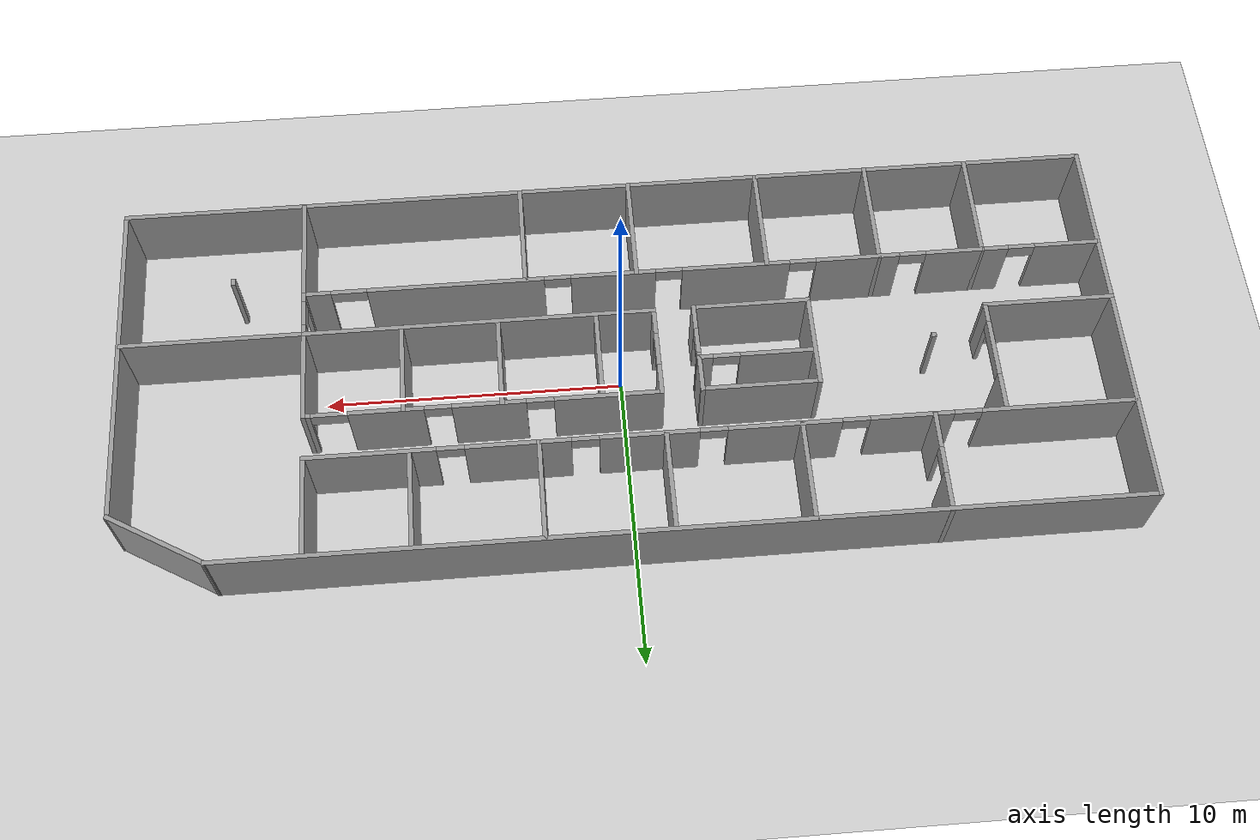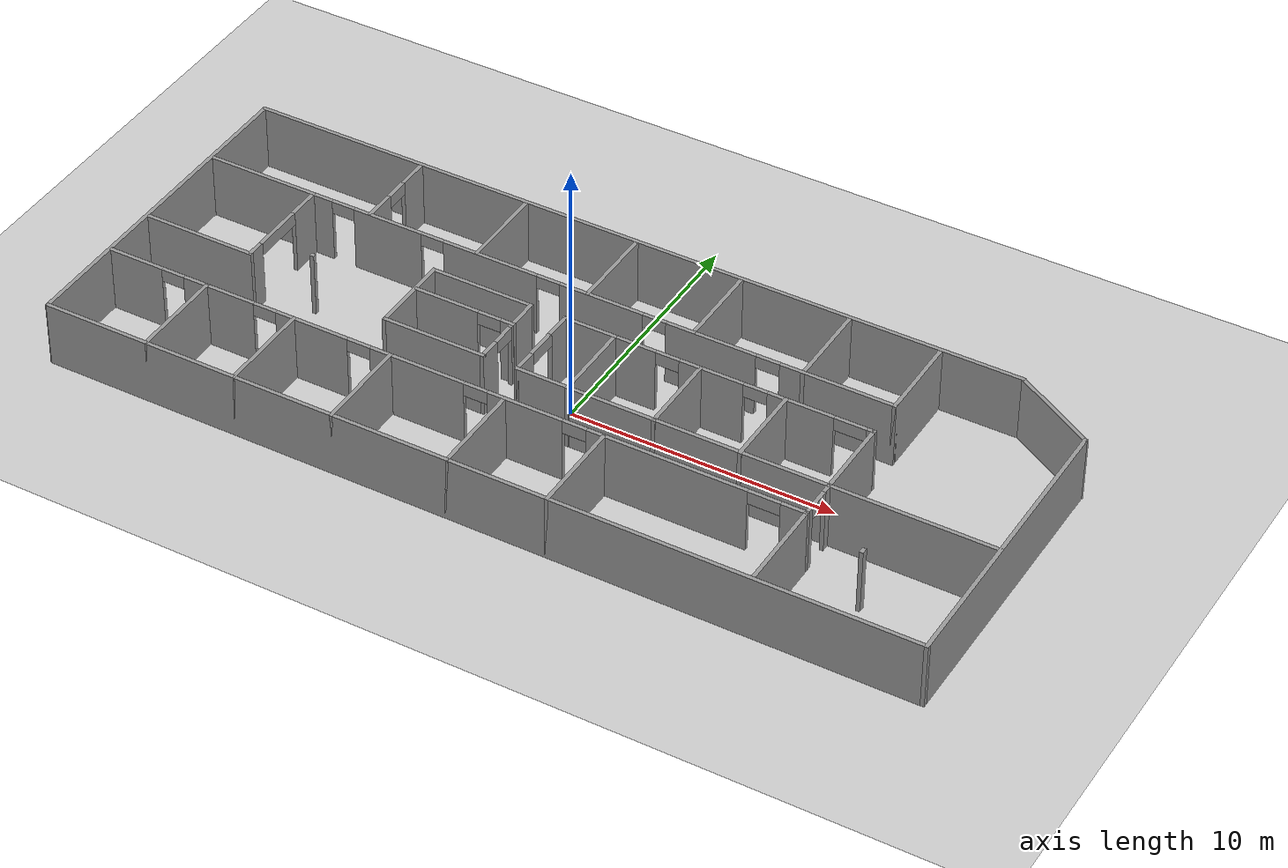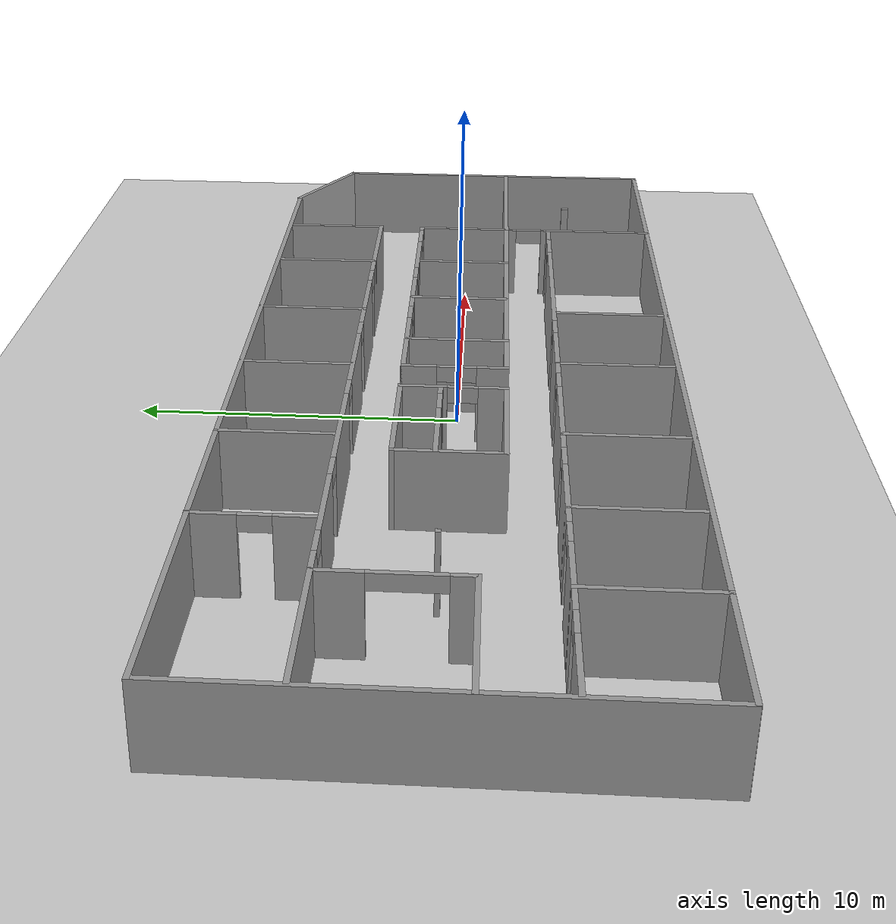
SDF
<?xml version='1.0'?>
<sdf version='1.6'>

 <world name="my_map">
    <!-- A global light source -->
    <include>
      <uri>model://sun</uri>
    </include>
    <!-- A ground plane -->
    <include>
      <uri>model://ground_plane</uri>
    </include>

  <model name='my_map'>
    <pose frame=''>0 0 0 0 -0 0</pose>
    <link name='Wall_0'>
      <collision name='Wall_0_Collision'>
        <geometry>
          <box>
            <size>30.15 0.15 2.5</size>
          </box>
        </geometry>
        <pose frame=''>0 0 1.25 0 -0 0</pose>
      </collision>
      <visual name='Wall_0_Visual'>
        <pose frame=''>0 0 1.25 0 -0 0</pose>
        <geometry>
          <box>
            <size>30.15 0.15 2.5</size>
          </box>
        </geometry>
        <material>
          <script>
            <uri>file://media/materials/scripts/gazebo.material</uri>
            <name>Gazebo/Grey</name>
          </script>
          <ambient>1 1 1 1</ambient>
        </material>
        <meta>
          <layer>0</layer>
        </meta>
      </visual>
      <pose frame=''>-1.56027 6.54473 0 0 -0 0</pose>
    </link>
    <link name='Wall_17'>
      <pose frame=''>-3.01877 -2.98027 0 0 -0 0</pose>
      <visual name='Wall_17_Visual_0'>
        <pose frame=''>-12.4419 0 1.25 0 -0 0</pose>
        <geometry>
          <box>
            <size>2.18355 0.15 2.5</size>
          </box>
        </geometry>
        <material>
          <script>
            <uri>file://media/materials/scripts/gazebo.material</uri>
            <name>Gazebo/Grey</name>
          </script>
          <ambient>1 1 1 1</ambient>
        </material>
        <meta>
          <layer>0</layer>
        </meta>
      </visual>
      <collision name='Wall_17_Collision_0'>
        <geometry>
          <box>
            <size>2.18355 0.15 2.5</size>
          </box>
        </geometry>
        <pose frame=''>-12.4419 0 1.25 0 -0 0</pose>
      </collision>
      <visual name='Wall_17_Visual_1'>
        <pose frame=''>-9.0323 0 1.25 0 -0 0</pose>
        <geometry>
          <box>
            <size>2.83572 0.15 2.5</size>
          </box>
        </geometry>
        <material>
          <script>
            <uri>file://media/materials/scripts/gazebo.material</uri>
            <name>Gazebo/Grey</name>
          </script>
          <ambient>1 1 1 1</ambient>
        </material>
        <meta>
          <layer>0</layer>
        </meta>
      </visual>
      <collision name='Wall_17_Collision_1'>
        <geometry>
          <box>
            <size>2.83572 0.15 2.5</size>
          </box>
        </geometry>
        <pose frame=''>-9.0323 0 1.25 0 -0 0</pose>
      </collision>
      <visual name='Wall_17_Visual_2'>
        <pose frame=''>-5.2867 0 1.25 0 -0 0</pose>
        <geometry>
          <box>
            <size>2.85548 0.15 2.5</size>
          </box>
        </geometry>
        <material>
          <script>
            <uri>file://media/materials/scripts/gazebo.material</uri>
            <name>Gazebo/Grey</name>
          </script>
          <ambient>1 1 1 1</ambient>
        </material>
        <meta>
          <layer>0</layer>
        </meta>
      </visual>
      <collision name='Wall_17_Collision_2'>
        <geometry>
          <box>
            <size>2.85548 0.15 2.5</size>
          </box>
        </geometry>
        <pose frame=''>-5.2867 0 1.25 0 -0 0</pose>
      </collision>
      <visual name='Wall_17_Visual_3'>
        <pose frame=''>-1.12602 0 1.25 0 -0 0</pose>
        <geometry>
          <box>
            <size>3.66588 0.15 2.5</size>
          </box>
        </geometry>
        <material>
          <script>
            <uri>file://media/materials/scripts/gazebo.material</uri>
            <name>Gazebo/Grey</name>
          </script>
          <ambient>1 1 1 1</ambient>
        </material>
        <meta>
          <layer>0</layer>
        </meta>
      </visual>
      <collision name='Wall_17_Collision_3'>
        <geometry>
          <box>
            <size>3.66588 0.15 2.5</size>
          </box>
        </geometry>
        <pose frame=''>-1.12602 0 1.25 0 -0 0</pose>
      </collision>
      <visual name='Wall_17_Visual_4'>
        <pose frame=''>3.04454 0 1.25 0 -0 0</pose>
        <geometry>
          <box>
            <size>2.87525 0.15 2.5</size>
          </box>
        </geometry>
        <material>
          <script>
            <uri>file://media/materials/scripts/gazebo.material</uri>
            <name>Gazebo/Grey</name>
          </script>
          <ambient>1 1 1 1</ambient>
        </material>
        <meta>
          <layer>0</layer>
        </meta>
      </visual>
      <collision name='Wall_17_Collision_4'>
        <geometry>
          <box>
            <size>2.87525 0.15 2.5</size>
          </box>
        </geometry>
        <pose frame=''>3.04454 0 1.25 0 -0 0</pose>
      </collision>
      <visual name='Wall_17_Visual_5'>
        <pose frame=''>8.36378 0 1.25 0 -0 0</pose>
        <geometry>
          <box>
            <size>5.96323 0.15 2.5</size>
          </box>
        </geometry>
        <material>
          <script>
            <uri>file://media/materials/scripts/gazebo.material</uri>
            <name>Gazebo/Grey</name>
          </script>
          <ambient>1 1 1 1</ambient>
        </material>
        <meta>
          <layer>0</layer>
        </meta>
      </visual>
      <collision name='Wall_17_Collision_5'>
        <geometry>
          <box>
            <size>5.96323 0.15 2.5</size>
          </box>
        </geometry>
        <pose frame=''>8.36378 0 1.25 0 -0 0</pose>
      </collision>
      <visual name='Wall_17_Visual_6'>
        <pose frame=''>13.0396 0 1.25 0 -0 0</pose>
        <geometry>
          <box>
            <size>0.988314 0.15 2.5</size>
          </box>
        </geometry>
        <material>
          <script>
            <uri>file://media/materials/scripts/gazebo.material</uri>
            <name>Gazebo/Grey</name>
          </script>
          <ambient>1 1 1 1</ambient>
        </material>
        <meta>
          <layer>0</layer>
        </meta>
      </visual>
      <collision name='Wall_17_Collision_6'>
        <geometry>
          <box>
            <size>0.988314 0.15 2.5</size>
          </box>
        </geometry>
        <pose frame=''>13.0396 0 1.25 0 -0 0</pose>
      </collision>
      <visual name='Wall_17_Visual_7'>
        <pose frame=''>-10.9002 0 2.25 0 -0 0</pose>
        <geometry>
          <box>
            <size>0.9 0.15 0.5</size>
          </box>
        </geometry>
        <material>
          <script>
            <uri>file://media/materials/scripts/gazebo.material</uri>
            <name>Gazebo/Grey</name>
          </script>
          <ambient>1 1 1 1</ambient>
        </material>
        <meta>
          <layer>0</layer>
        </meta>
      </visual>
      <collision name='Wall_17_Collision_7'>
        <geometry>
          <box>
            <size>0.9 0.15 0.5</size>
          </box>
        </geometry>
        <pose frame=''>-10.9002 0 2.25 0 -0 0</pose>
      </collision>
      <visual name='Wall_17_Visual_8'>
        <pose frame=''>-7.16444 0 2.25 0 -0 0</pose>
        <geometry>
          <box>
            <size>0.9 0.15 0.5</size>
          </box>
        </geometry>
        <material>
          <script>
            <uri>file://media/materials/scripts/gazebo.material</uri>
            <name>Gazebo/Grey</name>
          </script>
          <ambient>1 1 1 1</ambient>
        </material>
        <meta>
          <layer>0</layer>
        </meta>
      </visual>
      <collision name='Wall_17_Collision_8'>
        <geometry>
          <box>
            <size>0.9 0.15 0.5</size>
          </box>
        </geometry>
        <pose frame=''>-7.16444 0 2.25 0 -0 0</pose>
      </collision>
      <visual name='Wall_17_Visual_9'>
        <pose frame=''>-3.40896 0 2.25 0 -0 0</pose>
        <geometry>
          <box>
            <size>0.9 0.15 0.5</size>
          </box>
        </geometry>
        <material>
          <script>
            <uri>file://media/materials/scripts/gazebo.material</uri>
            <name>Gazebo/Grey</name>
          </script>
          <ambient>1 1 1 1</ambient>
        </material>
        <meta>
          <layer>0</layer>
        </meta>
      </visual>
      <collision name='Wall_17_Collision_9'>
        <geometry>
          <box>
            <size>0.9 0.15 0.5</size>
          </box>
        </geometry>
        <pose frame=''>-3.40896 0 2.25 0 -0 0</pose>
      </collision>
      <visual name='Wall_17_Visual_10'>
        <pose frame=''>1.15692 0 2.25 0 -0 0</pose>
        <geometry>
          <box>
            <size>0.9 0.15 0.5</size>
          </box>
        </geometry>
        <material>
          <script>
            <uri>file://media/materials/scripts/gazebo.material</uri>
            <name>Gazebo/Grey</name>
          </script>
          <ambient>1 1 1 1</ambient>
        </material>
        <meta>
          <layer>0</layer>
        </meta>
      </visual>
      <collision name='Wall_17_Collision_10'>
        <geometry>
          <box>
            <size>0.9 0.15 0.5</size>
          </box>
        </geometry>
        <pose frame=''>1.15692 0 2.25 0 -0 0</pose>
      </collision>
      <visual name='Wall_17_Visual_11'>
        <pose frame=''>4.93217 0 2.25 0 -0 0</pose>
        <geometry>
          <box>
            <size>0.9 0.15 0.5</size>
          </box>
        </geometry>
        <material>
          <script>
            <uri>file://media/materials/scripts/gazebo.material</uri>
            <name>Gazebo/Grey</name>
          </script>
          <ambient>1 1 1 1</ambient>
        </material>
        <meta>
          <layer>0</layer>
        </meta>
      </visual>
      <collision name='Wall_17_Collision_11'>
        <geometry>
          <box>
            <size>0.9 0.15 0.5</size>
          </box>
        </geometry>
        <pose frame=''>4.93217 0 2.25 0 -0 0</pose>
      </collision>
      <visual name='Wall_17_Visual_12'>
        <pose frame=''>11.9454 0 2.25 0 -0 0</pose>
        <geometry>
          <box>
            <size>1.2 0.15 0.5</size>
          </box>
        </geometry>
        <material>
          <script>
            <uri>file://media/materials/scripts/gazebo.material</uri>
            <name>Gazebo/Grey</name>
          </script>
          <ambient>1 1 1 1</ambient>
        </material>
        <meta>
          <layer>0</layer>
        </meta>
      </visual>
      <collision name='Wall_17_Collision_12'>
        <geometry>
          <box>
            <size>1.2 0.15 0.5</size>
          </box>
        </geometry>
        <pose frame=''>11.9454 0 2.25 0 -0 0</pose>
      </collision>
    </link>
    <link name='Wall_18'>
      <pose frame=''>10.4397 -2.21277 0 0 -0 1.5708</pose>
      <visual name='Wall_18_Visual_0'>
        <pose frame=''>-0.670294 0 1.25 0 -0 0</pose>
        <geometry>
          <box>
            <size>0.344645 0.15 2.5</size>
          </box>
        </geometry>
        <material>
          <script>
            <uri>file://media/materials/scripts/gazebo.material</uri>
            <name>Gazebo/Grey</name>
          </script>
          <ambient>1 1 1 1</ambient>
        </material>
        <meta>
          <layer>0</layer>
        </meta>
      </visual>
      <collision name='Wall_18_Collision_0'>
        <geometry>
          <box>
            <size>0.344645 0.15 2.5</size>
          </box>
        </geometry>
        <pose frame=''>-0.670294 0 1.25 0 -0 0</pose>
      </collision>
      <visual name='Wall_18_Visual_1'>
        <pose frame=''>0.622322 0 1.25 0 -0 0</pose>
        <geometry>
          <box>
            <size>0.440589 0.15 2.5</size>
          </box>
        </geometry>
        <material>
          <script>
            <uri>file://media/materials/scripts/gazebo.material</uri>
            <name>Gazebo/Grey</name>
          </script>
          <ambient>1 1 1 1</ambient>
        </material>
        <meta>
          <layer>0</layer>
        </meta>
      </visual>
      <collision name='Wall_18_Collision_1'>
        <geometry>
          <box>
            <size>0.440589 0.15 2.5</size>
          </box>
        </geometry>
        <pose frame=''>0.622322 0 1.25 0 -0 0</pose>
      </collision>
      <visual name='Wall_18_Visual_2'>
        <pose frame=''>-0.047972 0 2.25 0 -0 0</pose>
        <geometry>
          <box>
            <size>0.9 0.15 0.5</size>
          </box>
        </geometry>
        <material>
          <script>
            <uri>file://media/materials/scripts/gazebo.material</uri>
            <name>Gazebo/Grey</name>
          </script>
          <ambient>1 1 1 1</ambient>
        </material>
        <meta>
          <layer>0</layer>
        </meta>
      </visual>
      <collision name='Wall_18_Collision_2'>
        <geometry>
          <box>
            <size>0.9 0.15 0.5</size>
          </box>
        </geometry>
        <pose frame=''>-0.047972 0 2.25 0 -0 0</pose>
      </collision>
    </link>
    <link name='Wall_19'>
      <collision name='Wall_19_Collision'>
        <geometry>
          <box>
            <size>6.183 0.15 2.5</size>
          </box>
        </geometry>
        <pose frame=''>0 0 1.25 0 -0 0</pose>
      </collision>
      <visual name='Wall_19_Visual'>
        <pose frame=''>0 0 1.25 0 -0 0</pose>
        <geometry>
          <box>
            <size>6.183 0.15 2.5</size>
          </box>
        </geometry>
        <material>
          <script>
            <uri>file://media/materials/scripts/gazebo.material</uri>
            <name>Gazebo/Grey</name>
          </script>
          <ambient>1 1 1 1</ambient>
        </material>
        <meta>
          <layer>0</layer>
        </meta>
      </visual>
      <pose frame=''>13.4562 -1.44527 0 0 -0 0</pose>
    </link>
    <link name='Wall_2'>
      <collision name='Wall_2_Collision'>
        <geometry>
          <box>
            <size>33.205 0.15 2.5</size>
          </box>
        </geometry>
        <pose frame=''>0 0 1.25 0 -0 0</pose>
      </collision>
      <visual name='Wall_2_Visual'>
        <pose frame=''>0 0 1.25 0 -0 0</pose>
        <geometry>
          <box>
            <size>33.205 0.15 2.5</size>
          </box>
        </geometry>
        <material>
          <script>
            <uri>file://media/materials/scripts/gazebo.material</uri>
            <name>Gazebo/Grey</name>
          </script>
          <ambient>1 1 1 1</ambient>
        </material>
        <meta>
          <layer>0</layer>
        </meta>
      </visual>
      <pose frame=''>0.005228 -6.57227 0 0 -0 0</pose>
    </link>
    <link name='Wall_21'>
      <pose frame=''>-3.01877 3.17173 0 0 -0 0</pose>
      <visual name='Wall_21_Visual_0'>
        <pose frame=''>-10.9891 0 1.25 0 -0 0</pose>
        <geometry>
          <box>
            <size>5.0889 0.15 2.5</size>
          </box>
        </geometry>
        <material>
          <script>
            <uri>file://media/materials/scripts/gazebo.material</uri>
            <name>Gazebo/Grey</name>
          </script>
          <ambient>1 1 1 1</ambient>
        </material>
        <meta>
          <layer>0</layer>
        </meta>
      </visual>
      <collision name='Wall_21_Collision_0'>
        <geometry>
          <box>
            <size>5.0889 0.15 2.5</size>
          </box>
        </geometry>
        <pose frame=''>-10.9891 0 1.25 0 -0 0</pose>
      </collision>
      <visual name='Wall_21_Visual_1'>
        <pose frame=''>-6.17344 0 1.25 0 -0 0</pose>
        <geometry>
          <box>
            <size>2.74234 0.15 2.5</size>
          </box>
        </geometry>
        <material>
          <script>
            <uri>file://media/materials/scripts/gazebo.material</uri>
            <name>Gazebo/Grey</name>
          </script>
          <ambient>1 1 1 1</ambient>
        </material>
        <meta>
          <layer>0</layer>
        </meta>
      </visual>
      <collision name='Wall_21_Collision_1'>
        <geometry>
          <box>
            <size>2.74234 0.15 2.5</size>
          </box>
        </geometry>
        <pose frame=''>-6.17344 0 1.25 0 -0 0</pose>
      </collision>
      <visual name='Wall_21_Visual_2'>
        <pose frame=''>-2.0424 0 1.25 0 -0 0</pose>
        <geometry>
          <box>
            <size>3.71973 0.15 2.5</size>
          </box>
        </geometry>
        <material>
          <script>
            <uri>file://media/materials/scripts/gazebo.material</uri>
            <name>Gazebo/Grey</name>
          </script>
          <ambient>1 1 1 1</ambient>
        </material>
        <meta>
          <layer>0</layer>
        </meta>
      </visual>
      <collision name='Wall_21_Collision_2'>
        <geometry>
          <box>
            <size>3.71973 0.15 2.5</size>
          </box>
        </geometry>
        <pose frame=''>-2.0424 0 1.25 0 -0 0</pose>
      </collision>
      <visual name='Wall_21_Visual_3'>
        <pose frame=''>2.34286 0 1.25 0 -0 0</pose>
        <geometry>
          <box>
            <size>3.2508 0.15 2.5</size>
          </box>
        </geometry>
        <material>
          <script>
            <uri>file://media/materials/scripts/gazebo.material</uri>
            <name>Gazebo/Grey</name>
          </script>
          <ambient>1 1 1 1</ambient>
        </material>
        <meta>
          <layer>0</layer>
        </meta>
      </visual>
      <collision name='Wall_21_Collision_3'>
        <geometry>
          <box>
            <size>3.2508 0.15 2.5</size>
          </box>
        </geometry>
        <pose frame=''>2.34286 0 1.25 0 -0 0</pose>
      </collision>
      <visual name='Wall_21_Visual_4'>
        <pose frame=''>6.5826 0 1.25 0 -0 0</pose>
        <geometry>
          <box>
            <size>3.42869 0.15 2.5</size>
          </box>
        </geometry>
        <material>
          <script>
            <uri>file://media/materials/scripts/gazebo.material</uri>
            <name>Gazebo/Grey</name>
          </script>
          <ambient>1 1 1 1</ambient>
        </material>
        <meta>
          <layer>0</layer>
        </meta>
      </visual>
      <collision name='Wall_21_Collision_4'>
        <geometry>
          <box>
            <size>3.42869 0.15 2.5</size>
          </box>
        </geometry>
        <pose frame=''>6.5826 0 1.25 0 -0 0</pose>
      </collision>
      <visual name='Wall_21_Visual_5'>
        <pose frame=''>11.3652 0 1.25 0 -0 0</pose>
        <geometry>
          <box>
            <size>4.33655 0.15 2.5</size>
          </box>
        </geometry>
        <material>
          <script>
            <uri>file://media/materials/scripts/gazebo.material</uri>
            <name>Gazebo/Grey</name>
          </script>
          <ambient>1 1 1 1</ambient>
        </material>
        <meta>
          <layer>0</layer>
        </meta>
      </visual>
      <collision name='Wall_21_Collision_5'>
        <geometry>
          <box>
            <size>4.33655 0.15 2.5</size>
          </box>
        </geometry>
        <pose frame=''>11.3652 0 1.25 0 -0 0</pose>
      </collision>
      <visual name='Wall_21_Visual_6'>
        <pose frame=''>-7.9946 0 2.25 0 -0 0</pose>
        <geometry>
          <box>
            <size>0.9 0.15 0.5</size>
          </box>
        </geometry>
        <material>
          <script>
            <uri>file://media/materials/scripts/gazebo.material</uri>
            <name>Gazebo/Grey</name>
          </script>
          <ambient>1 1 1 1</ambient>
        </material>
        <meta>
          <layer>0</layer>
        </meta>
      </visual>
      <collision name='Wall_21_Collision_6'>
        <geometry>
          <box>
            <size>0.9 0.15 0.5</size>
          </box>
        </geometry>
        <pose frame=''>-7.9946 0 2.25 0 -0 0</pose>
      </collision>
      <visual name='Wall_21_Visual_7'>
        <pose frame=''>-4.35227 0 2.25 0 -0 0</pose>
        <geometry>
          <box>
            <size>0.9 0.15 0.5</size>
          </box>
        </geometry>
        <material>
          <script>
            <uri>file://media/materials/scripts/gazebo.material</uri>
            <name>Gazebo/Grey</name>
          </script>
          <ambient>1 1 1 1</ambient>
        </material>
        <meta>
          <layer>0</layer>
        </meta>
      </visual>
      <collision name='Wall_21_Collision_7'>
        <geometry>
          <box>
            <size>0.9 0.15 0.5</size>
          </box>
        </geometry>
        <pose frame=''>-4.35227 0 2.25 0 -0 0</pose>
      </collision>
      <visual name='Wall_21_Visual_8'>
        <pose frame=''>0.267461 0 2.25 0 -0 0</pose>
        <geometry>
          <box>
            <size>0.9 0.15 0.5</size>
          </box>
        </geometry>
        <material>
          <script>
            <uri>file://media/materials/scripts/gazebo.material</uri>
            <name>Gazebo/Grey</name>
          </script>
          <ambient>1 1 1 1</ambient>
        </material>
        <meta>
          <layer>0</layer>
        </meta>
      </visual>
      <collision name='Wall_21_Collision_8'>
        <geometry>
          <box>
            <size>0.9 0.15 0.5</size>
          </box>
        </geometry>
        <pose frame=''>0.267461 0 2.25 0 -0 0</pose>
      </collision>
      <visual name='Wall_21_Visual_9'>
        <pose frame=''>4.41826 0 2.25 0 -0 0</pose>
        <geometry>
          <box>
            <size>0.9 0.15 0.5</size>
          </box>
        </geometry>
        <material>
          <script>
            <uri>file://media/materials/scripts/gazebo.material</uri>
            <name>Gazebo/Grey</name>
          </script>
          <ambient>1 1 1 1</ambient>
        </material>
        <meta>
          <layer>0</layer>
        </meta>
      </visual>
      <collision name='Wall_21_Collision_9'>
        <geometry>
          <box>
            <size>0.9 0.15 0.5</size>
          </box>
        </geometry>
        <pose frame=''>4.41826 0 2.25 0 -0 0</pose>
      </collision>
      <visual name='Wall_21_Visual_10'>
        <pose frame=''>8.74695 0 2.25 0 -0 0</pose>
        <geometry>
          <box>
            <size>0.9 0.15 0.5</size>
          </box>
        </geometry>
        <material>
          <script>
            <uri>file://media/materials/scripts/gazebo.material</uri>
            <name>Gazebo/Grey</name>
          </script>
          <ambient>1 1 1 1</ambient>
        </material>
        <meta>
          <layer>0</layer>
        </meta>
      </visual>
      <collision name='Wall_21_Collision_10'>
        <geometry>
          <box>
            <size>0.9 0.15 0.5</size>
          </box>
        </geometry>
        <pose frame=''>8.74695 0 2.25 0 -0 0</pose>
      </collision>
    </link>
    <link name='Wall_22'>
      <collision name='Wall_22_Collision'>
        <geometry>
          <box>
            <size>3.4718 0.15 2.5</size>
          </box>
        </geometry>
        <pose frame=''>0 0 1.25 0 -0 0</pose>
      </collision>
      <visual name='Wall_22_Visual'>
        <pose frame=''>0 0 1.25 0 -0 0</pose>
        <geometry>
          <box>
            <size>3.4718 0.15 2.5</size>
          </box>
        </geometry>
        <material>
          <script>
            <uri>file://media/materials/scripts/gazebo.material</uri>
            <name>Gazebo/Grey</name>
          </script>
          <ambient>1 1 1 1</ambient>
        </material>
        <meta>
          <layer>0</layer>
        </meta>
      </visual>
      <pose frame=''>10.4397 4.83263 0 0 -0 1.5708</pose>
    </link>
    <link name='Wall_24'>
      <collision name='Wall_24_Collision'>
        <geometry>
          <box>
            <size>3.71862 0.15 2.5</size>
          </box>
        </geometry>
        <pose frame=''>0 0 1.25 0 -0 0</pose>
      </collision>
      <visual name='Wall_24_Visual'>
        <pose frame=''>0 0 1.25 0 -0 0</pose>
        <geometry>
          <box>
            <size>3.71862 0.15 2.5</size>
          </box>
        </geometry>
        <material>
          <script>
            <uri>file://media/materials/scripts/gazebo.material</uri>
            <name>Gazebo/Grey</name>
          </script>
          <ambient>1 1 1 1</ambient>
        </material>
        <meta>
          <layer>0</layer>
        </meta>
      </visual>
      <pose frame=''>10.4399 -4.76458 0 0 -0 -1.57069</pose>
    </link>
    <link name='Wall_29'>
      <collision name='Wall_29_Collision'>
        <geometry>
          <box>
            <size>4.436 0.15 2.5</size>
          </box>
        </geometry>
        <pose frame=''>0 0 1.25 0 -0 0</pose>
      </collision>
      <visual name='Wall_29_Visual'>
        <pose frame=''>0 0 1.25 0 -0 0</pose>
        <geometry>
          <box>
            <size>4.436 0.15 2.5</size>
          </box>
        </geometry>
        <material>
          <script>
            <uri>file://media/materials/scripts/gazebo.material</uri>
            <name>Gazebo/Grey</name>
          </script>
          <ambient>1 1 1 1</ambient>
        </material>
        <meta>
          <layer>0</layer>
        </meta>
      </visual>
      <pose frame=''>-14.4173 -0.778273 0 0 -0 0</pose>
    </link>
    <link name='Wall_33'>
      <pose frame=''>-12.2743 1.23329 0 0 -0 -1.5708</pose>
      <visual name='Wall_33_Visual_0'>
        <pose frame=''>-1.32363 0 1.25 0 -0 0</pose>
        <geometry>
          <box>
            <size>1.35275 0.15 2.5</size>
          </box>
        </geometry>
        <material>
          <script>
            <uri>file://media/materials/scripts/gazebo.material</uri>
            <name>Gazebo/Grey</name>
          </script>
          <ambient>1 1 1 1</ambient>
        </material>
        <meta>
          <layer>0</layer>
        </meta>
      </visual>
      <collision name='Wall_33_Collision_0'>
        <geometry>
          <box>
            <size>1.35275 0.15 2.5</size>
          </box>
        </geometry>
        <pose frame=''>-1.32363 0 1.25 0 -0 0</pose>
      </collision>
      <visual name='Wall_33_Visual_1'>
        <pose frame=''>1.67637 0 1.25 0 -0 0</pose>
        <geometry>
          <box>
            <size>0.647254 0.15 2.5</size>
          </box>
        </geometry>
        <material>
          <script>
            <uri>file://media/materials/scripts/gazebo.material</uri>
            <name>Gazebo/Grey</name>
          </script>
          <ambient>1 1 1 1</ambient>
        </material>
        <meta>
          <layer>0</layer>
        </meta>
      </visual>
      <collision name='Wall_33_Collision_1'>
        <geometry>
          <box>
            <size>0.647254 0.15 2.5</size>
          </box>
        </geometry>
        <pose frame=''>1.67637 0 1.25 0 -0 0</pose>
      </collision>
      <visual name='Wall_33_Visual_2'>
        <pose frame=''>0.352746 0 2.25 0 -0 0</pose>
        <geometry>
          <box>
            <size>2 0.15 0.5</size>
          </box>
        </geometry>
        <material>
          <script>
            <uri>file://media/materials/scripts/gazebo.material</uri>
            <name>Gazebo/Grey</name>
          </script>
          <ambient>1 1 1 1</ambient>
        </material>
        <meta>
          <layer>0</layer>
        </meta>
      </visual>
      <collision name='Wall_33_Collision_2'>
        <geometry>
          <box>
            <size>2 0.15 0.5</size>
          </box>
        </geometry>
        <pose frame=''>0.352746 0 2.25 0 -0 0</pose>
      </collision>
    </link>
    <link name='Wall_36'>
      <collision name='Wall_36_Collision'>
        <geometry>
          <box>
            <size>3.25014 0.15 2.5</size>
          </box>
        </geometry>
        <pose frame=''>0 0 1.25 0 -0 0</pose>
      </collision>
      <visual name='Wall_36_Visual'>
        <pose frame=''>0 0 1.25 0 -0 0</pose>
        <geometry>
          <box>
            <size>3.25014 0.15 2.5</size>
          </box>
        </geometry>
        <material>
          <script>
            <uri>file://media/materials/scripts/gazebo.material</uri>
            <name>Gazebo/Grey</name>
          </script>
          <ambient>1 1 1 1</ambient>
        </material>
        <meta>
          <layer>0</layer>
        </meta>
      </visual>
      <pose frame=''>-6.39227 0.104727 0 0 -0 -1.5708</pose>
    </link>
    <link name='Wall_37'>
      <collision name='Wall_37_Collision'>
        <geometry>
          <box>
            <size>4 0.15 2.5</size>
          </box>
        </geometry>
        <pose frame=''>0 0 1.25 0 -0 0</pose>
      </collision>
      <visual name='Wall_37_Visual'>
        <pose frame=''>0 0 1.25 0 -0 0</pose>
        <geometry>
          <box>
            <size>4 0.15 2.5</size>
          </box>
        </geometry>
        <material>
          <script>
            <uri>file://media/materials/scripts/gazebo.material</uri>
            <name>Gazebo/Grey</name>
          </script>
          <ambient>1 1 1 1</ambient>
        </material>
        <meta>
          <layer>0</layer>
        </meta>
      </visual>
      <pose frame=''>-4.46727 -1.44527 0 0 -0 0</pose>
    </link>
    <link name='Wall_38'>
      <pose frame=''>-2.54227 0.104727 0 0 -0 1.5708</pose>
      <visual name='Wall_38_Visual_0'>
        <pose frame=''>-1.17342 0 1.25 0 -0 0</pose>
        <geometry>
          <box>
            <size>0.903304 0.15 2.5</size>
          </box>
        </geometry>
        <material>
          <script>
            <uri>file://media/materials/scripts/gazebo.material</uri>
            <name>Gazebo/Grey</name>
          </script>
          <ambient>1 1 1 1</ambient>
        </material>
        <meta>
          <layer>0</layer>
        </meta>
      </visual>
      <collision name='Wall_38_Collision_0'>
        <geometry>
          <box>
            <size>0.903304 0.15 2.5</size>
          </box>
        </geometry>
        <pose frame=''>-1.17342 0 1.25 0 -0 0</pose>
      </collision>
      <visual name='Wall_38_Visual_1'>
        <pose frame=''>0.901652 0 1.25 0 -0 0</pose>
        <geometry>
          <box>
            <size>1.44684 0.15 2.5</size>
          </box>
        </geometry>
        <material>
          <script>
            <uri>file://media/materials/scripts/gazebo.material</uri>
            <name>Gazebo/Grey</name>
          </script>
          <ambient>1 1 1 1</ambient>
        </material>
        <meta>
          <layer>0</layer>
        </meta>
      </visual>
      <collision name='Wall_38_Collision_1'>
        <geometry>
          <box>
            <size>1.44684 0.15 2.5</size>
          </box>
        </geometry>
        <pose frame=''>0.901652 0 1.25 0 -0 0</pose>
      </collision>
      <visual name='Wall_38_Visual_2'>
        <pose frame=''>-0.271767 0 2.25 0 -0 0</pose>
        <geometry>
          <box>
            <size>0.9 0.15 0.5</size>
          </box>
        </geometry>
        <material>
          <script>
            <uri>file://media/materials/scripts/gazebo.material</uri>
            <name>Gazebo/Grey</name>
          </script>
          <ambient>1 1 1 1</ambient>
        </material>
        <meta>
          <layer>0</layer>
        </meta>
      </visual>
      <collision name='Wall_38_Collision_2'>
        <geometry>
          <box>
            <size>0.9 0.15 0.5</size>
          </box>
        </geometry>
        <pose frame=''>-0.271767 0 2.25 0 -0 0</pose>
      </collision>
    </link>
    <link name='Wall_39'>
      <collision name='Wall_39_Collision'>
        <geometry>
          <box>
            <size>4 0.15 2.5</size>
          </box>
        </geometry>
        <pose frame=''>0 0 1.25 0 -0 0</pose>
      </collision>
      <visual name='Wall_39_Visual'>
        <pose frame=''>0 0 1.25 0 -0 0</pose>
        <geometry>
          <box>
            <size>4 0.15 2.5</size>
          </box>
        </geometry>
        <material>
          <script>
            <uri>file://media/materials/scripts/gazebo.material</uri>
            <name>Gazebo/Grey</name>
          </script>
          <ambient>1 1 1 1</ambient>
        </material>
        <meta>
          <layer>0</layer>
        </meta>
      </visual>
      <pose frame=''>-4.46727 1.65473 0 0 -0 3.14159</pose>
    </link>
    <link name='Wall_41'>
      <pose frame=''>-1.20227 0.104727 0 0 -0 -1.5708</pose>
      <visual name='Wall_41_Visual_0'>
        <pose frame=''>-1.08533 0 1.25 0 -0 0</pose>
        <geometry>
          <box>
            <size>1.07934 0.15 2.5</size>
          </box>
        </geometry>
        <material>
          <script>
            <uri>file://media/materials/scripts/gazebo.material</uri>
            <name>Gazebo/Grey</name>
          </script>
          <ambient>1 1 1 1</ambient>
        </material>
        <meta>
          <layer>0</layer>
        </meta>
      </visual>
      <collision name='Wall_41_Collision_0'>
        <geometry>
          <box>
            <size>1.07934 0.15 2.5</size>
          </box>
        </geometry>
        <pose frame=''>-1.08533 0 1.25 0 -0 0</pose>
      </collision>
      <visual name='Wall_41_Visual_1'>
        <pose frame=''>1.13967 0 1.25 0 -0 0</pose>
        <geometry>
          <box>
            <size>0.970656 0.15 2.5</size>
          </box>
        </geometry>
        <material>
          <script>
            <uri>file://media/materials/scripts/gazebo.material</uri>
            <name>Gazebo/Grey</name>
          </script>
          <ambient>1 1 1 1</ambient>
        </material>
        <meta>
          <layer>0</layer>
        </meta>
      </visual>
      <collision name='Wall_41_Collision_1'>
        <geometry>
          <box>
            <size>0.970656 0.15 2.5</size>
          </box>
        </geometry>
        <pose frame=''>1.13967 0 1.25 0 -0 0</pose>
      </collision>
      <visual name='Wall_41_Visual_2'>
        <pose frame=''>0.054344 0 2.25 0 -0 0</pose>
        <geometry>
          <box>
            <size>1.2 0.15 0.5</size>
          </box>
        </geometry>
        <material>
          <script>
            <uri>file://media/materials/scripts/gazebo.material</uri>
            <name>Gazebo/Grey</name>
          </script>
          <ambient>1 1 1 1</ambient>
        </material>
        <meta>
          <layer>0</layer>
        </meta>
      </visual>
      <collision name='Wall_41_Collision_2'>
        <geometry>
          <box>
            <size>1.2 0.15 0.5</size>
          </box>
        </geometry>
        <pose frame=''>0.054344 0 2.25 0 -0 0</pose>
      </collision>
    </link>
    <link name='Wall_42'>
      <collision name='Wall_42_Collision'>
        <geometry>
          <box>
            <size>11.792 0.15 2.5</size>
          </box>
        </geometry>
        <pose frame=''>0 0 1.25 0 -0 0</pose>
      </collision>
      <visual name='Wall_42_Visual'>
        <pose frame=''>0 0 1.25 0 -0 0</pose>
        <geometry>
          <box>
            <size>11.792 0.15 2.5</size>
          </box>
        </geometry>
        <material>
          <script>
            <uri>file://media/materials/scripts/gazebo.material</uri>
            <name>Gazebo/Grey</name>
          </script>
          <ambient>1 1 1 1</ambient>
        </material>
        <meta>
          <layer>0</layer>
        </meta>
      </visual>
      <pose frame=''>4.61873 -1.44527 0 0 -0 0</pose>
    </link>
    <link name='Wall_45'>
      <pose frame=''>4.61873 1.65473 0 0 -0 0</pose>
      <visual name='Wall_45_Visual_0'>
        <pose frame=''>-4.1007 0 1.25 0 -0 0</pose>
        <geometry>
          <box>
            <size>3.59059 0.15 2.5</size>
          </box>
        </geometry>
        <material>
          <script>
            <uri>file://media/materials/scripts/gazebo.material</uri>
            <name>Gazebo/Grey</name>
          </script>
          <ambient>1 1 1 1</ambient>
        </material>
        <meta>
          <layer>0</layer>
        </meta>
      </visual>
      <collision name='Wall_45_Collision_0'>
        <geometry>
          <box>
            <size>3.59059 0.15 2.5</size>
          </box>
        </geometry>
        <pose frame=''>-4.1007 0 1.25 0 -0 0</pose>
      </collision>
      <visual name='Wall_45_Visual_1'>
        <pose frame=''>-0.195089 0 1.25 0 -0 0</pose>
        <geometry>
          <box>
            <size>2.42064 0.15 2.5</size>
          </box>
        </geometry>
        <material>
          <script>
            <uri>file://media/materials/scripts/gazebo.material</uri>
            <name>Gazebo/Grey</name>
          </script>
          <ambient>1 1 1 1</ambient>
        </material>
        <meta>
          <layer>0</layer>
        </meta>
      </visual>
      <collision name='Wall_45_Collision_1'>
        <geometry>
          <box>
            <size>2.42064 0.15 2.5</size>
          </box>
        </geometry>
        <pose frame=''>-0.195089 0 1.25 0 -0 0</pose>
      </collision>
      <visual name='Wall_45_Visual_2'>
        <pose frame=''>3.14938 0 1.25 0 -0 0</pose>
        <geometry>
          <box>
            <size>2.46829 0.15 2.5</size>
          </box>
        </geometry>
        <material>
          <script>
            <uri>file://media/materials/scripts/gazebo.material</uri>
            <name>Gazebo/Grey</name>
          </script>
          <ambient>1 1 1 1</ambient>
        </material>
        <meta>
          <layer>0</layer>
        </meta>
      </visual>
      <collision name='Wall_45_Collision_2'>
        <geometry>
          <box>
            <size>2.46829 0.15 2.5</size>
          </box>
        </geometry>
        <pose frame=''>3.14938 0 1.25 0 -0 0</pose>
      </collision>
      <visual name='Wall_45_Visual_3'>
        <pose frame=''>5.73976 0 1.25 0 -0 0</pose>
        <geometry>
          <box>
            <size>0.312475 0.15 2.5</size>
          </box>
        </geometry>
        <material>
          <script>
            <uri>file://media/materials/scripts/gazebo.material</uri>
            <name>Gazebo/Grey</name>
          </script>
          <ambient>1 1 1 1</ambient>
        </material>
        <meta>
          <layer>0</layer>
        </meta>
      </visual>
      <collision name='Wall_45_Collision_3'>
        <geometry>
          <box>
            <size>0.312475 0.15 2.5</size>
          </box>
        </geometry>
        <pose frame=''>5.73976 0 1.25 0 -0 0</pose>
      </collision>
      <visual name='Wall_45_Visual_4'>
        <pose frame=''>-1.85541 0 2.25 0 -0 0</pose>
        <geometry>
          <box>
            <size>0.9 0.15 0.5</size>
          </box>
        </geometry>
        <material>
          <script>
            <uri>file://media/materials/scripts/gazebo.material</uri>
            <name>Gazebo/Grey</name>
          </script>
          <ambient>1 1 1 1</ambient>
        </material>
        <meta>
          <layer>0</layer>
        </meta>
      </visual>
      <collision name='Wall_45_Collision_4'>
        <geometry>
          <box>
            <size>0.9 0.15 0.5</size>
          </box>
        </geometry>
        <pose frame=''>-1.85541 0 2.25 0 -0 0</pose>
      </collision>
      <visual name='Wall_45_Visual_5'>
        <pose frame=''>1.46523 0 2.25 0 -0 0</pose>
        <geometry>
          <box>
            <size>0.9 0.15 0.5</size>
          </box>
        </geometry>
        <material>
          <script>
            <uri>file://media/materials/scripts/gazebo.material</uri>
            <name>Gazebo/Grey</name>
          </script>
          <ambient>1 1 1 1</ambient>
        </material>
        <meta>
          <layer>0</layer>
        </meta>
      </visual>
      <collision name='Wall_45_Collision_5'>
        <geometry>
          <box>
            <size>0.9 0.15 0.5</size>
          </box>
        </geometry>
        <pose frame=''>1.46523 0 2.25 0 -0 0</pose>
      </collision>
      <visual name='Wall_45_Visual_6'>
        <pose frame=''>4.98353 0 2.25 0 -0 0</pose>
        <geometry>
          <box>
            <size>1.2 0.15 0.5</size>
          </box>
        </geometry>
        <material>
          <script>
            <uri>file://media/materials/scripts/gazebo.material</uri>
            <name>Gazebo/Grey</name>
          </script>
          <ambient>1 1 1 1</ambient>
        </material>
        <meta>
          <layer>0</layer>
        </meta>
      </visual>
      <collision name='Wall_45_Collision_6'>
        <geometry>
          <box>
            <size>1.2 0.15 0.5</size>
          </box>
        </geometry>
        <pose frame=''>4.98353 0 2.25 0 -0 0</pose>
      </collision>
    </link>
    <link name='Wall_46'>
      <collision name='Wall_46_Collision'>
        <geometry>
          <box>
            <size>3.25042 0.15 2.5</size>
          </box>
        </geometry>
        <pose frame=''>0 0 1.25 0 -0 0</pose>
      </collision>
      <visual name='Wall_46_Visual'>
        <pose frame=''>0 0 1.25 0 -0 0</pose>
        <geometry>
          <box>
            <size>3.25042 0.15 2.5</size>
          </box>
        </geometry>
        <material>
          <script>
            <uri>file://media/materials/scripts/gazebo.material</uri>
            <name>Gazebo/Grey</name>
          </script>
          <ambient>1 1 1 1</ambient>
        </material>
        <meta>
          <layer>0</layer>
        </meta>
      </visual>
      <pose frame=''>10.4397 0.104727 0 0 -0 -1.5708</pose>
    </link>
    <link name='Wall_51'>
      <pose frame=''>-9.93201 4.87923 0 0 -0 -1.5708</pose>
      <visual name='Wall_51_Visual_0'>
        <pose frame=''>-1.07723 0 1.25 0 -0 0</pose>
        <geometry>
          <box>
            <size>1.34554 0.15 2.5</size>
          </box>
        </geometry>
        <material>
          <script>
            <uri>file://media/materials/scripts/gazebo.material</uri>
            <name>Gazebo/Grey</name>
          </script>
          <ambient>1 1 1 1</ambient>
        </material>
        <meta>
          <layer>0</layer>
        </meta>
      </visual>
      <collision name='Wall_51_Collision_0'>
        <geometry>
          <box>
            <size>1.34554 0.15 2.5</size>
          </box>
        </geometry>
        <pose frame=''>-1.07723 0 1.25 0 -0 0</pose>
      </collision>
      <visual name='Wall_51_Visual_1'>
        <pose frame=''>1.12277 0 1.25 0 -0 0</pose>
        <geometry>
          <box>
            <size>1.25446 0.15 2.5</size>
          </box>
        </geometry>
        <material>
          <script>
            <uri>file://media/materials/scripts/gazebo.material</uri>
            <name>Gazebo/Grey</name>
          </script>
          <ambient>1 1 1 1</ambient>
        </material>
        <meta>
          <layer>0</layer>
        </meta>
      </visual>
      <collision name='Wall_51_Collision_1'>
        <geometry>
          <box>
            <size>1.25446 0.15 2.5</size>
          </box>
        </geometry>
        <pose frame=''>1.12277 0 1.25 0 -0 0</pose>
      </collision>
      <visual name='Wall_51_Visual_2'>
        <pose frame=''>0.045545 0 2.25 0 -0 0</pose>
        <geometry>
          <box>
            <size>0.9 0.15 0.5</size>
          </box>
        </geometry>
        <material>
          <script>
            <uri>file://media/materials/scripts/gazebo.material</uri>
            <name>Gazebo/Grey</name>
          </script>
          <ambient>1 1 1 1</ambient>
        </material>
        <meta>
          <layer>0</layer>
        </meta>
      </visual>
      <collision name='Wall_51_Collision_2'>
        <geometry>
          <box>
            <size>0.9 0.15 0.5</size>
          </box>
        </geometry>
        <pose frame=''>0.045545 0 2.25 0 -0 0</pose>
      </collision>
    </link>
    <link name='Wall_53'>
      <collision name='Wall_53_Collision'>
        <geometry>
          <box>
            <size>3.5 0.15 2.5</size>
          </box>
        </geometry>
        <pose frame=''>0 0 1.25 0 -0 0</pose>
      </collision>
      <visual name='Wall_53_Visual'>
        <pose frame=''>0 0 1.25 0 -0 0</pose>
        <geometry>
          <box>
            <size>3.5 0.15 2.5</size>
          </box>
        </geometry>
        <material>
          <script>
            <uri>file://media/materials/scripts/gazebo.material</uri>
            <name>Gazebo/Grey</name>
          </script>
          <ambient>1 1 1 1</ambient>
        </material>
        <meta>
          <layer>0</layer>
        </meta>
      </visual>
      <pose frame=''>-5.61507 4.86714 0 0 -0 -1.5708</pose>
    </link>
    <link name='Wall_55'>
      <collision name='Wall_55_Collision'>
        <geometry>
          <box>
            <size>3.5 0.15 2.5</size>
          </box>
        </geometry>
        <pose frame=''>0 0 1.25 0 -0 0</pose>
      </collision>
      <visual name='Wall_55_Visual'>
        <pose frame=''>0 0 1.25 0 -0 0</pose>
        <geometry>
          <box>
            <size>3.5 0.15 2.5</size>
          </box>
        </geometry>
        <material>
          <script>
            <uri>file://media/materials/scripts/gazebo.material</uri>
            <name>Gazebo/Grey</name>
          </script>
          <ambient>1 1 1 1</ambient>
        </material>
        <meta>
          <layer>0</layer>
        </meta>
      </visual>
      <pose frame=''>-1.21436 4.85555 0 0 -0 -1.5708</pose>
    </link>
    <link name='Wall_57'>
      <collision name='Wall_57_Collision'>
        <geometry>
          <box>
            <size>3.5 0.15 2.5</size>
          </box>
        </geometry>
        <pose frame=''>0 0 1.25 0 -0 0</pose>
      </collision>
      <visual name='Wall_57_Visual'>
        <pose frame=''>0 0 1.25 0 -0 0</pose>
        <geometry>
          <box>
            <size>3.5 0.15 2.5</size>
          </box>
        </geometry>
        <material>
          <script>
            <uri>file://media/materials/scripts/gazebo.material</uri>
            <name>Gazebo/Grey</name>
          </script>
          <ambient>1 1 1 1</ambient>
        </material>
        <meta>
          <layer>0</layer>
        </meta>
      </visual>
      <pose frame=''>2.888 4.84722 0 0 -0 -1.5708</pose>
    </link>
    <link name='Wall_6'>
      <collision name='Wall_6_Collision'>
        <geometry>
          <box>
            <size>13.25 0.15 2.5</size>
          </box>
        </geometry>
        <pose frame=''>0 0 1.25 0 -0 0</pose>
      </collision>
      <visual name='Wall_6_Visual'>
        <pose frame=''>0 0 1.25 0 -0 0</pose>
        <geometry>
          <box>
            <size>13.25 0.15 2.5</size>
          </box>
        </geometry>
        <material>
          <script>
            <uri>file://media/materials/scripts/gazebo.material</uri>
            <name>Gazebo/Grey</name>
          </script>
          <ambient>1 1 1 1</ambient>
        </material>
        <meta>
          <layer>0</layer>
        </meta>
      </visual>
      <pose frame=''>-16.5603 -0.005273 0 0 -0 -1.5708</pose>
    </link>
    <link name='Wall_60'>
      <collision name='Wall_60_Collision'>
        <geometry>
          <box>
            <size>3.5 0.15 2.5</size>
          </box>
        </geometry>
        <pose frame=''>0 0 1.25 0 -0 0</pose>
      </collision>
      <visual name='Wall_60_Visual'>
        <pose frame=''>0 0 1.25 0 -0 0</pose>
        <geometry>
          <box>
            <size>3.5 0.15 2.5</size>
          </box>
        </geometry>
        <material>
          <script>
            <uri>file://media/materials/scripts/gazebo.material</uri>
            <name>Gazebo/Grey</name>
          </script>
          <ambient>1 1 1 1</ambient>
        </material>
        <meta>
          <layer>0</layer>
        </meta>
      </visual>
      <pose frame=''>7.04142 4.84652 0 0 -0 -1.5708</pose>
    </link>
    <link name='Wall_62'>
      <collision name='Wall_62_Collision'>
        <geometry>
          <box>
            <size>3.25 0.15 2.5</size>
          </box>
        </geometry>
        <pose frame=''>0 0 1.25 0 -0 0</pose>
      </collision>
      <visual name='Wall_62_Visual'>
        <pose frame=''>0 0 1.25 0 -0 0</pose>
        <geometry>
          <box>
            <size>3.25 0.15 2.5</size>
          </box>
        </geometry>
        <material>
          <script>
            <uri>file://media/materials/scripts/gazebo.material</uri>
            <name>Gazebo/Grey</name>
          </script>
          <ambient>1 1 1 1</ambient>
        </material>
        <meta>
          <layer>0</layer>
        </meta>
      </visual>
      <pose frame=''>0.729528 0.098611 0 0 -0 -1.5708</pose>
    </link>
    <link name='Wall_64'>
      <collision name='Wall_64_Collision'>
        <geometry>
          <box>
            <size>3.25 0.15 2.5</size>
          </box>
        </geometry>
        <pose frame=''>0 0 1.25 0 -0 0</pose>
      </collision>
      <visual name='Wall_64_Visual'>
        <pose frame=''>0 0 1.25 0 -0 0</pose>
        <geometry>
          <box>
            <size>3.25 0.15 2.5</size>
          </box>
        </geometry>
        <material>
          <script>
            <uri>file://media/materials/scripts/gazebo.material</uri>
            <name>Gazebo/Grey</name>
          </script>
          <ambient>1 1 1 1</ambient>
        </material>
        <meta>
          <layer>0</layer>
        </meta>
      </visual>
      <pose frame=''>3.99994 0.098611 0 0 -0 -1.5708</pose>
    </link>
    <link name='Wall_66'>
      <collision name='Wall_66_Collision'>
        <geometry>
          <box>
            <size>3.25 0.15 2.5</size>
          </box>
        </geometry>
        <pose frame=''>0 0 1.25 0 -0 0</pose>
      </collision>
      <visual name='Wall_66_Visual'>
        <pose frame=''>0 0 1.25 0 -0 0</pose>
        <geometry>
          <box>
            <size>3.25 0.15 2.5</size>
          </box>
        </geometry>
        <material>
          <script>
            <uri>file://media/materials/scripts/gazebo.material</uri>
            <name>Gazebo/Grey</name>
          </script>
          <ambient>1 1 1 1</ambient>
        </material>
        <meta>
          <layer>0</layer>
        </meta>
      </visual>
      <pose frame=''>7.20494 0.098611 0 0 -0 -1.5708</pose>
    </link>
    <link name='Wall_69'>
      <collision name='Wall_69_Collision'>
        <geometry>
          <box>
            <size>0.16 0.15 2.5</size>
          </box>
        </geometry>
        <pose frame=''>0 0 1.25 0 -0 0</pose>
      </collision>
      <visual name='Wall_69_Visual'>
        <pose frame=''>0 0 1.25 0 -0 0</pose>
        <geometry>
          <box>
            <size>0.16 0.15 2.5</size>
          </box>
        </geometry>
        <material>
          <script>
            <uri>file://media/materials/scripts/gazebo.material</uri>
            <name>Gazebo/Grey</name>
          </script>
          <ambient>0 0 0 1</ambient>
        </material>
        <meta>
          <layer>0</layer>
        </meta>
      </visual>
      <pose frame=''>-10.3819 0.237481 0 0 -0 0</pose>
    </link>
    <link name='Wall_70'>
      <pose frame=''>-4.46247 0.474727 0 0 -0 0</pose>
      <visual name='Wall_70_Visual_0'>
        <pose frame=''>-0.71532 0 1.25 0 -0 0</pose>
        <geometry>
          <box>
            <size>2.56936 0.15 2.5</size>
          </box>
        </geometry>
        <material>
          <script>
            <uri>file://media/materials/scripts/gazebo.material</uri>
            <name>Gazebo/Grey</name>
          </script>
          <ambient>1 1 1 1</ambient>
        </material>
        <meta>
          <layer>0</layer>
        </meta>
      </visual>
      <collision name='Wall_70_Collision_0'>
        <geometry>
          <box>
            <size>2.56936 0.15 2.5</size>
          </box>
        </geometry>
        <pose frame=''>-0.71532 0 1.25 0 -0 0</pose>
      </collision>
      <visual name='Wall_70_Visual_1'>
        <pose frame=''>1.73468 0 1.25 0 -0 0</pose>
        <geometry>
          <box>
            <size>0.530641 0.15 2.5</size>
          </box>
        </geometry>
        <material>
          <script>
            <uri>file://media/materials/scripts/gazebo.material</uri>
            <name>Gazebo/Grey</name>
          </script>
          <ambient>1 1 1 1</ambient>
        </material>
        <meta>
          <layer>0</layer>
        </meta>
      </visual>
      <collision name='Wall_70_Collision_1'>
        <geometry>
          <box>
            <size>0.530641 0.15 2.5</size>
          </box>
        </geometry>
        <pose frame=''>1.73468 0 1.25 0 -0 0</pose>
      </collision>
      <visual name='Wall_70_Visual_2'>
        <pose frame=''>1.01936 0 2.25 0 -0 0</pose>
        <geometry>
          <box>
            <size>0.9 0.15 0.5</size>
          </box>
        </geometry>
        <material>
          <script>
            <uri>file://media/materials/scripts/gazebo.material</uri>
            <name>Gazebo/Grey</name>
          </script>
          <ambient>1 1 1 1</ambient>
        </material>
        <meta>
          <layer>0</layer>
        </meta>
      </visual>
      <collision name='Wall_70_Collision_2'>
        <geometry>
          <box>
            <size>0.9 0.15 0.5</size>
          </box>
        </geometry>
        <pose frame=''>1.01936 0 2.25 0 -0 0</pose>
      </collision>
    </link>
    <link name='Wall_74'>
      <collision name='Wall_74_Collision'>
        <geometry>
          <box>
            <size>3.742 0.15 2.5</size>
          </box>
        </geometry>
        <pose frame=''>0 0 1.25 0 -0 0</pose>
      </collision>
      <visual name='Wall_74_Visual'>
        <pose frame=''>0 0 1.25 0 -0 0</pose>
        <geometry>
          <box>
            <size>3.742 0.15 2.5</size>
          </box>
        </geometry>
        <material>
          <script>
            <uri>file://media/materials/scripts/gazebo.material</uri>
            <name>Gazebo/Grey</name>
          </script>
          <ambient>1 1 1 1</ambient>
        </material>
        <meta>
          <layer>0</layer>
        </meta>
      </visual>
      <pose frame=''>-12.5583 -4.77627 0 0 -0 -1.5708</pose>
    </link>
    <link name='Wall_77'>
      <collision name='Wall_77_Collision'>
        <geometry>
          <box>
            <size>3.742 0.15 2.5</size>
          </box>
        </geometry>
        <pose frame=''>0 0 1.25 0 -0 0</pose>
      </collision>
      <visual name='Wall_77_Visual'>
        <pose frame=''>0 0 1.25 0 -0 0</pose>
        <geometry>
          <box>
            <size>3.742 0.15 2.5</size>
          </box>
        </geometry>
        <material>
          <script>
            <uri>file://media/materials/scripts/gazebo.material</uri>
            <name>Gazebo/Grey</name>
          </script>
          <ambient>1 1 1 1</ambient>
        </material>
        <meta>
          <layer>0</layer>
        </meta>
      </visual>
      <pose frame=''>-9.03127 -4.77627 0 0 -0 -1.5708</pose>
    </link>
    <link name='Wall_79'>
      <collision name='Wall_79_Collision'>
        <geometry>
          <box>
            <size>3.731 0.15 2.5</size>
          </box>
        </geometry>
        <pose frame=''>0 0 1.25 0 -0 0</pose>
      </collision>
      <visual name='Wall_79_Visual'>
        <pose frame=''>0 0 1.25 0 -0 0</pose>
        <geometry>
          <box>
            <size>3.731 0.15 2.5</size>
          </box>
        </geometry>
        <material>
          <script>
            <uri>file://media/materials/scripts/gazebo.material</uri>
            <name>Gazebo/Grey</name>
          </script>
          <ambient>1 1 1 1</ambient>
        </material>
        <meta>
          <layer>0</layer>
        </meta>
      </visual>
      <pose frame=''>-5.19327 -4.78177 0 0 -0 -1.5708</pose>
    </link>
    <link name='Wall_8'>
      <collision name='Wall_8_Collision'>
        <geometry>
          <box>
            <size>3.72864 0.15 2.5</size>
          </box>
        </geometry>
        <pose frame=''>0 0 1.25 0 -0 0</pose>
      </collision>
      <visual name='Wall_8_Visual'>
        <pose frame=''>0 0 1.25 0 -0 0</pose>
        <geometry>
          <box>
            <size>3.72864 0.15 2.5</size>
          </box>
        </geometry>
        <material>
          <script>
            <uri>file://media/materials/scripts/gazebo.material</uri>
            <name>Gazebo/Grey</name>
          </script>
          <ambient>1 1 1 1</ambient>
        </material>
        <meta>
          <layer>0</layer>
        </meta>
      </visual>
      <pose frame=''>14.9862 5.64473 0 0 -0 -0.527049</pose>
    </link>
    <link name='Wall_81'>
      <collision name='Wall_81_Collision'>
        <geometry>
          <box>
            <size>3.731 0.15 2.5</size>
          </box>
        </geometry>
        <pose frame=''>0 0 1.25 0 -0 0</pose>
      </collision>
      <visual name='Wall_81_Visual'>
        <pose frame=''>0 0 1.25 0 -0 0</pose>
        <geometry>
          <box>
            <size>3.731 0.15 2.5</size>
          </box>
        </geometry>
        <material>
          <script>
            <uri>file://media/materials/scripts/gazebo.material</uri>
            <name>Gazebo/Grey</name>
          </script>
          <ambient>1 1 1 1</ambient>
        </material>
        <meta>
          <layer>0</layer>
        </meta>
      </visual>
      <pose frame=''>-0.755272 -4.78177 0 0 -0 -1.5708</pose>
    </link>
    <link name='Wall_83'>
      <collision name='Wall_83_Collision'>
        <geometry>
          <box>
            <size>3.688 0.15 2.5</size>
          </box>
        </geometry>
        <pose frame=''>0 0 1.25 0 -0 0</pose>
      </collision>
      <visual name='Wall_83_Visual'>
        <pose frame=''>0 0 1.25 0 -0 0</pose>
        <geometry>
          <box>
            <size>3.688 0.15 2.5</size>
          </box>
        </geometry>
        <material>
          <script>
            <uri>file://media/materials/scripts/gazebo.material</uri>
            <name>Gazebo/Grey</name>
          </script>
          <ambient>1 1 1 1</ambient>
        </material>
        <meta>
          <layer>0</layer>
        </meta>
      </visual>
      <pose frame=''>3.00273 -4.80327 0 0 -0 -1.5708</pose>
    </link>
    <link name='Wall_85'>
      <collision name='Wall_85_Collision'>
        <geometry>
          <box>
            <size>0.247 0.15 2.5</size>
          </box>
        </geometry>
        <pose frame=''>0 0 1.25 0 -0 0</pose>
      </collision>
      <visual name='Wall_85_Visual'>
        <pose frame=''>0 0 1.25 0 -0 0</pose>
        <geometry>
          <box>
            <size>0.247 0.15 2.5</size>
          </box>
        </geometry>
        <material>
          <script>
            <uri>file://media/materials/scripts/gazebo.material</uri>
            <name>Gazebo/Grey</name>
          </script>
          <ambient>1 1 1 1</ambient>
        </material>
        <meta>
          <layer>0</layer>
        </meta>
      </visual>
      <pose frame=''>12.8067 -3.67177 0 0 -0 1.5708</pose>
    </link>
    <link name='Wall_9'>
      <collision name='Wall_9_Collision'>
        <geometry>
          <box>
            <size>11.467 0.15 2.5</size>
          </box>
        </geometry>
        <pose frame=''>0 0 1.25 0 -0 0</pose>
      </collision>
      <visual name='Wall_9_Visual'>
        <pose frame=''>0 0 1.25 0 -0 0</pose>
        <geometry>
          <box>
            <size>11.467 0.15 2.5</size>
          </box>
        </geometry>
        <material>
          <script>
            <uri>file://media/materials/scripts/gazebo.material</uri>
            <name>Gazebo/Grey</name>
          </script>
          <ambient>1 1 1 1</ambient>
        </material>
        <meta>
          <layer>0</layer>
        </meta>
      </visual>
      <pose frame=''>16.5327 -0.913773 0 0 -0 -1.5708</pose>
    </link>
    <static>1</static>
  </model>
  </world>
</sdf>
